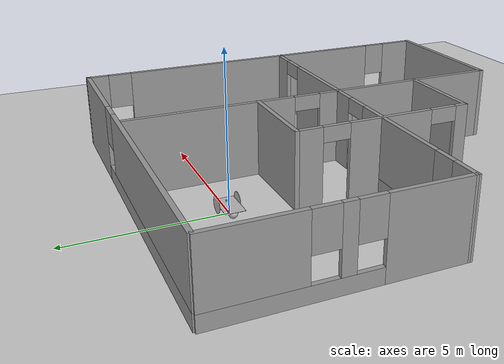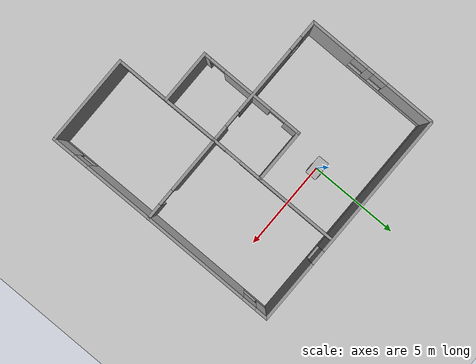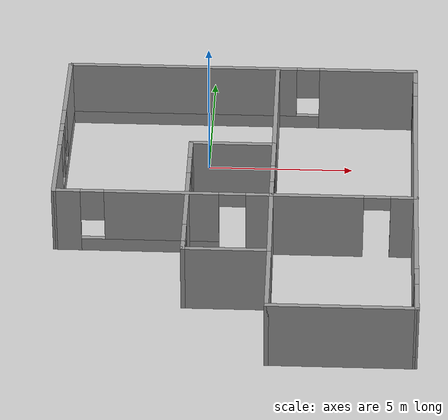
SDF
<sdf version="1.6">
 <world name="default">
  <light name="sun" type="directional">
   <pose>0 0 10 0 -0 0</pose>
   <diffuse>0.8 0.8 0.8 1</diffuse>
   <specular>0.2 0.2 0.2 1</specular>
   <attenuation>
    <range>1000</range>
    <constant>0.9</constant>
    <linear>0.01</linear>
    <quadratic>0.001</quadratic>
   </attenuation>
   <direction>-0.5 0.1 -0.9</direction>
  </light>
  <model name="ground_plane">
   <static>1</static>
   <link name="link">
    <collision name="collision">
     <geometry><plane><normal>0 0 1</normal><size>100 100</size></plane></geometry>
     <surface>
      <contact><collide_bitmask>65535</collide_bitmask></contact>
      <friction><ode><mu>100</mu><mu2>50</mu2></ode></friction>
     </surface>
    </collision>
    <visual name="visual">
     <cast_shadows>0</cast_shadows>
     <geometry><plane><normal>0 0 1</normal><size>100 100</size></plane></geometry>
     <material>
      <script><uri>file://media/materials/scripts/gazebo.material</uri><name>Gazebo/Grey</name></script>
     </material>
    </visual>
   </link>
  </model>
  <gravity>0 0 -9.8</gravity>
  <magnetic_field>6e-06 2.3e-05 -4.2e-05</magnetic_field>
  <atmosphere type="adiabatic"/>
  <physics name="default_physics" default="0" type="ode">
   <max_step_size>0.001</max_step_size>
   <real_time_factor>1</real_time_factor>
   <real_time_update_rate>1000</real_time_update_rate>
  </physics>
  <scene><ambient>0.4 0.4 0.4 1</ambient><background>0.7 0.7 0.7 1</background><shadows>1</shadows></scene>
  <audio><device>default</device></audio>
  <spherical_coordinates>
   <surface_model>EARTH_WGS84</surface_model>
   <latitude_deg>0</latitude_deg>
   <longitude_deg>0</longitude_deg>
   <elevation>0</elevation>
   <heading_deg>0</heading_deg>
  </spherical_coordinates>
  <model name="waychair">
   <link name="base_footprint">
    <inertial>
     <pose>0.002475 0 0.141733 0 -0 0</pose>
     <mass>20.2</mass>
     <inertia>
      <ixx>0.734224</ixx>
      <ixy>0</ixy>
      <ixz>-0.00866337</ixz>
      <iyy>1.69526</iyy>
      <iyz>0</iyz>
      <izz>0.961255</izz>
     </inertia>
    </inertial>
    <collision name="base_footprint_fixed_joint_lump__base_link_collision">
     <pose>0 0 0.28 0 -0 0</pose>
     <geometry><box><size>1.067 0.635 0.01</size></box></geometry>
    </collision>
    <collision name="base_footprint_fixed_joint_lump__sensor_laser_collision_1">
     <pose>0.25 0 0.315 0 -0 0</pose>
     <geometry><box><size>0.04 0.04 0.04</size></box></geometry>
    </collision>
    <visual name="base_footprint_visual"><geometry><box><size>0.001 0.001 0.001</size></box></geometry></visual>
    <visual name="base_footprint_fixed_joint_lump__base_link_visual_1">
     <pose>0 0 0.28 0 -0 0</pose>
     <geometry><box><size>1.067 0.635 0.01</size></box></geometry>
    </visual>
    <visual name="base_footprint_fixed_joint_lump__sensor_laser_visual_2">
     <pose>0.25 0 0.315 0 -0 0</pose>
     <geometry><box><size>0.04 0.04 0.04</size></box></geometry>
     <material><script><uri>__default__</uri><name>__default__</name></script></material>
    </visual>
    <sensor name="head_hokuyo_sensor" type="ray">
     <visualize>1</visualize>
     <update_rate>20</update_rate>
     <ray>
      <scan>
       <horizontal>
        <samples>1440</samples>
        <resolution>1</resolution>
        <min_angle>-3.14159</min_angle>
        <max_angle>3.14159</max_angle>
       </horizontal>
       <vertical><samples>1</samples><min_angle>0</min_angle><max_angle>0</max_angle></vertical>
      </scan>
      <range><min>0.06</min><max>20</max><resolution>0.01</resolution></range>
      <noise><type>gaussian</type><mean>0</mean><stddev>0.01</stddev></noise>
     </ray>
     <plugin name="gazebo_ros_head_hokuyo_controller" filename="libgazebo_ros_laser.so">
      <topicName>/waychair/laser_scan/scan</topicName>
      <frameName>sensor_laser</frameName>
      <robotNamespace>/</robotNamespace>
     </plugin>
     <pose>0.25 0 0.315 0 -0 0</pose>
    </sensor>
   </link>
   <link name="caster_wheel">
    <pose>-0.3 0 0.1375 0 -0 0</pose>
    <inertial>
     <mass>1</mass>
     <inertia>
      <ixx>0.0075625</ixx>
      <ixy>0</ixy>
      <ixz>0</ixz>
      <iyy>0.0075625</iyy>
      <iyz>0</iyz>
      <izz>0.0075625</izz>
     </inertia>
    </inertial>
    <collision name="caster_wheel_collision">
     <geometry><sphere><radius>0.1375</radius></sphere></geometry>
    </collision>
    <visual name="caster_wheel_visual">
     <pose>0 0 0 1.5708 -0 0</pose>
     <geometry><sphere><radius>0.1375</radius></sphere></geometry>
    </visual>
   </link>
   <joint name="caster_wheel_joint" type="revolute">
    <child>caster_wheel</child>
    <parent>base_footprint</parent>
    <axis>
     <xyz>0 1 0</xyz>
     <limit><lower>-1e+16</lower><upper>1e+16</upper></limit>
     <dynamics><spring_reference>0</spring_reference><spring_stiffness>0</spring_stiffness></dynamics>
     <use_parent_model_frame>1</use_parent_model_frame>
    </axis>
   </joint>
   <link name="left_wheel">
    <pose>0.2 0.3245 0.275 0 -0 0</pose>
    <inertial>
     <mass>1</mass>
     <inertia>
      <ixx>0.0189146</ixx>
      <ixy>0</ixy>
      <ixz>0</ixz>
      <iyy>0.0189146</iyy>
      <iyz>0</iyz>
      <izz>0.0378125</izz>
     </inertia>
    </inertial>
    <collision name="left_wheel_collision">
     <pose>0 0 0 1.5708 -0 0</pose>
     <geometry><cylinder><length>0.01</length><radius>0.275</radius></cylinder></geometry>
    </collision>
    <visual name="left_wheel_visual">
     <pose>0 0 0 1.5708 -0 0</pose>
     <geometry><cylinder><length>0.01</length><radius>0.275</radius></cylinder></geometry>
    </visual>
   </link>
   <joint name="left_wheel_joint" type="revolute">
    <child>left_wheel</child>
    <parent>base_footprint</parent>
    <axis>
     <xyz>0 1 0</xyz>
     <limit><lower>-1e+16</lower><upper>1e+16</upper></limit>
     <dynamics><spring_reference>0</spring_reference><spring_stiffness>0</spring_stiffness></dynamics>
     <use_parent_model_frame>1</use_parent_model_frame>
    </axis>
   </joint>
   <link name="right_wheel">
    <pose>0.2 -0.3245 0.275 0 -0 0</pose>
    <inertial>
     <mass>1</mass>
     <inertia>
      <ixx>0.0189146</ixx>
      <ixy>0</ixy>
      <ixz>0</ixz>
      <iyy>0.0189146</iyy>
      <iyz>0</iyz>
      <izz>0.0378125</izz>
     </inertia>
    </inertial>
    <collision name="right_wheel_collision">
     <pose>0 0 0 1.5708 -0 0</pose>
     <geometry><cylinder><length>0.01</length><radius>0.275</radius></cylinder></geometry>
    </collision>
    <visual name="right_wheel_visual">
     <pose>0 0 0 1.5708 -0 0</pose>
     <geometry><cylinder><length>0.01</length><radius>0.275</radius></cylinder></geometry>
    </visual>
   </link>
   <joint name="right_wheel_joint" type="revolute">
    <child>right_wheel</child>
    <parent>base_footprint</parent>
    <axis>
     <xyz>0 1 0</xyz>
     <limit><lower>-1e+16</lower><upper>1e+16</upper></limit>
     <dynamics><spring_reference>0</spring_reference><spring_stiffness>0</spring_stiffness></dynamics>
     <use_parent_model_frame>1</use_parent_model_frame>
    </axis>
   </joint>
   <static>0</static>
   <plugin name="differential_drive_controller" filename="libgazebo_ros_diff_drive.so">
    <alwaysOn>0</alwaysOn>
    <legacyMode>0</legacyMode>
    <updateRate>20</updateRate>
    <leftJoint>left_wheel_joint</leftJoint>
    <rightJoint>right_wheel_joint</rightJoint>
    <wheelSeparation>0.1</wheelSeparation>
    <wheelDiameter>0.55</wheelDiameter>
    <torque>20</torque>
    <commandTopic>/waychair/base_controller/cmd_vel</commandTopic>
    <odometryTopic>/waychair/base_controller/odom</odometryTopic>
    <odometryFrame>odom</odometryFrame>
    <robotBaseFrame>base_footprint</robotBaseFrame>
    <robotNamespace>/</robotNamespace>
   </plugin>
   <pose>-0.01429 -0.001596 -2e-06 -0 -8e-06 0.006543</pose>
  </model>
  <model name="home">
   <pose>1.06393 -4.00159 0 0 -0 0</pose>
   <link name="Wall_11">
    <pose>-2.43351 -0.752008 0 0 -0 -0.000554</pose>
    <visual name="Wall_11_Visual_0">
     <pose>-3.25375 0 1.25 0 -0 0</pose>
     <geometry><box><size>0.975464 0.15 2.5</size></box></geometry>
     <material>
      <script><uri>file://media/materials/scripts/gazebo.material</uri><name>Gazebo/Grey</name></script>
      <ambient>1 1 1 1</ambient>
     </material>
     <meta><layer>0</layer></meta>
    </visual>
    <collision name="Wall_11_Collision_0">
     <geometry><box><size>0.975464 0.15 2.5</size></box></geometry>
     <pose>-3.25375 0 1.25 0 -0 0</pose>
    </collision>
    <visual name="Wall_11_Visual_1">
     <pose>3.27397 0 1.25 0 -0 0</pose>
     <geometry><box><size>0.935038 0.15 2.5</size></box></geometry>
     <material>
      <script><uri>file://media/materials/scripts/gazebo.material</uri><name>Gazebo/Grey</name></script>
      <ambient>1 1 1 1</ambient>
     </material>
     <meta><layer>0</layer></meta>
    </visual>
    <collision name="Wall_11_Collision_1">
     <geometry><box><size>0.935038 0.15 2.5</size></box></geometry>
     <pose>3.27397 0 1.25 0 -0 0</pose>
    </collision>
    <visual name="Wall_11_Visual_2">
     <pose>-0.429787 0 0.25 0 -0 0</pose>
     <geometry><box><size>4.67247 0.15 0.5</size></box></geometry>
     <material>
      <script><uri>file://media/materials/scripts/gazebo.material</uri><name>Gazebo/Grey</name></script>
      <ambient>1 1 1 1</ambient>
     </material>
     <meta><layer>0</layer></meta>
    </visual>
    <collision name="Wall_11_Collision_2">
     <geometry><box><size>4.67247 0.15 0.5</size></box></geometry>
     <pose>-0.429787 0 0.25 0 -0 0</pose>
    </collision>
    <visual name="Wall_11_Visual_3">
     <pose>-0.029787 0 1.5 0 -0 0</pose>
     <geometry><box><size>3.87247 0.15 2</size></box></geometry>
     <material>
      <script><uri>file://media/materials/scripts/gazebo.material</uri><name>Gazebo/Grey</name></script>
      <ambient>1 1 1 1</ambient>
     </material>
     <meta><layer>0</layer></meta>
    </visual>
    <collision name="Wall_11_Collision_3">
     <geometry><box><size>3.87247 0.15 2</size></box></geometry>
     <pose>-0.029787 0 1.5 0 -0 0</pose>
    </collision>
    <visual name="Wall_11_Visual_4">
     <pose>-2.36602 0 1.9 0 -0 0</pose>
     <geometry><box><size>0.8 0.15 1.2</size></box></geometry>
     <material>
      <script><uri>file://media/materials/scripts/gazebo.material</uri><name>Gazebo/Grey</name></script>
      <ambient>1 1 1 1</ambient>
     </material>
     <meta><layer>0</layer></meta>
    </visual>
    <collision name="Wall_11_Collision_4">
     <geometry><box><size>0.8 0.15 1.2</size></box></geometry>
     <pose>-2.36602 0 1.9 0 -0 0</pose>
    </collision>
    <visual name="Wall_11_Visual_5">
     <pose>2.35645 0 2.25 0 -0 0</pose>
     <geometry><box><size>0.9 0.15 0.5</size></box></geometry>
     <material>
      <script><uri>file://media/materials/scripts/gazebo.material</uri><name>Gazebo/Grey</name></script>
      <ambient>1 1 1 1</ambient>
     </material>
     <meta><layer>0</layer></meta>
    </visual>
    <collision name="Wall_11_Collision_5">
     <geometry><box><size>0.9 0.15 0.5</size></box></geometry>
     <pose>2.35645 0 2.25 0 -0 0</pose>
    </collision>
   </link>
   <link name="Wall_12">
    <pose>1.24149 0.672992 0 0 -0 1.56483</pose>
    <visual name="Wall_12_Visual_0">
     <pose>-1.10509 0 1.25 0 -0 0</pose>
     <geometry><box><size>0.793929 0.15 2.5</size></box></geometry>
     <material>
      <script><uri>file://media/materials/scripts/gazebo.material</uri><name>Gazebo/Grey</name></script>
      <ambient>1 1 1 1</ambient>
     </material>
     <meta><layer>0</layer></meta>
    </visual>
    <collision name="Wall_12_Collision_0">
     <geometry><box><size>0.793929 0.15 2.5</size></box></geometry>
     <pose>-1.10509 0 1.25 0 -0 0</pose>
    </collision>
    <visual name="Wall_12_Visual_1">
     <pose>0.846965 0 1.25 0 -0 0</pose>
     <geometry><box><size>1.31018 0.15 2.5</size></box></geometry>
     <material>
      <script><uri>file://media/materials/scripts/gazebo.material</uri><name>Gazebo/Grey</name></script>
      <ambient>1 1 1 1</ambient>
     </material>
     <meta><layer>0</layer></meta>
    </visual>
    <collision name="Wall_12_Collision_1">
     <geometry><box><size>1.31018 0.15 2.5</size></box></geometry>
     <pose>0.846965 0 1.25 0 -0 0</pose>
    </collision>
    <visual name="Wall_12_Visual_2">
     <pose>-0.258126 0 2.25 0 -0 0</pose>
     <geometry><box><size>0.9 0.15 0.5</size></box></geometry>
     <material>
      <script><uri>file://media/materials/scripts/gazebo.material</uri><name>Gazebo/Grey</name></script>
      <ambient>1 1 1 1</ambient>
     </material>
     <meta><layer>0</layer></meta>
    </visual>
    <collision name="Wall_12_Collision_2">
     <geometry><box><size>0.9 0.15 0.5</size></box></geometry>
     <pose>-0.258126 0 2.25 0 -0 0</pose>
    </collision>
   </link>
   <link name="Wall_13">
    <collision name="Wall_13_Collision">
     <geometry><box><size>3 0.15 2.5</size></box></geometry>
     <pose>0 0 1.25 0 -0 0</pose>
    </collision>
    <visual name="Wall_13_Visual">
     <pose>0 0 1.25 0 -0 0</pose>
     <geometry><box><size>3 0.15 2.5</size></box></geometry>
     <material>
      <script><uri>file://media/materials/scripts/gazebo.material</uri><name>Gazebo/Grey</name></script>
      <ambient>1 1 1 1</ambient>
     </material>
     <meta><layer>0</layer></meta>
    </visual>
    <pose>-0.174993 2.10002 0 0 -0 3.14159</pose>
   </link>
   <link name="Wall_14">
    <pose>-1.59999 -0.824978 0 0 -0 -1.5708</pose>
    <visual name="Wall_14_Visual_0">
     <pose>-2.54191 0 1.25 0 -0 0</pose>
     <geometry><box><size>0.916176 0.15 2.5</size></box></geometry>
     <material>
      <script><uri>file://media/materials/scripts/gazebo.material</uri><name>Gazebo/Grey</name></script>
      <ambient>1 1 1 1</ambient>
     </material>
     <meta><layer>0</layer></meta>
    </visual>
    <collision name="Wall_14_Collision_0">
     <geometry><box><size>0.916176 0.15 2.5</size></box></geometry>
     <pose>-2.54191 0 1.25 0 -0 0</pose>
    </collision>
    <visual name="Wall_14_Visual_1">
     <pose>0.235123 0 1.25 0 -0 0</pose>
     <geometry><box><size>2.83789 0.15 2.5</size></box></geometry>
     <material>
      <script><uri>file://media/materials/scripts/gazebo.material</uri><name>Gazebo/Grey</name></script>
      <ambient>1 1 1 1</ambient>
     </material>
     <meta><layer>0</layer></meta>
    </visual>
    <collision name="Wall_14_Collision_1">
     <geometry><box><size>2.83789 0.15 2.5</size></box></geometry>
     <pose>0.235123 0 1.25 0 -0 0</pose>
    </collision>
    <visual name="Wall_14_Visual_2">
     <pose>2.77704 0 1.25 0 -0 0</pose>
     <geometry><box><size>0.44593 0.15 2.5</size></box></geometry>
     <material>
      <script><uri>file://media/materials/scripts/gazebo.material</uri><name>Gazebo/Grey</name></script>
      <ambient>1 1 1 1</ambient>
     </material>
     <meta><layer>0</layer></meta>
    </visual>
    <collision name="Wall_14_Collision_2">
     <geometry><box><size>0.44593 0.15 2.5</size></box></geometry>
     <pose>2.77704 0 1.25 0 -0 0</pose>
    </collision>
    <visual name="Wall_14_Visual_3">
     <pose>-1.63382 0 2.25 0 -0 0</pose>
     <geometry><box><size>0.9 0.15 0.5</size></box></geometry>
     <material>
      <script><uri>file://media/materials/scripts/gazebo.material</uri><name>Gazebo/Grey</name></script>
      <ambient>1 1 1 1</ambient>
     </material>
     <meta><layer>0</layer></meta>
    </visual>
    <collision name="Wall_14_Collision_3">
     <geometry><box><size>0.9 0.15 0.5</size></box></geometry>
     <pose>-1.63382 0 2.25 0 -0 0</pose>
    </collision>
    <visual name="Wall_14_Visual_4">
     <pose>2.10407 0 2.25 0 -0 0</pose>
     <geometry><box><size>0.9 0.15 0.5</size></box></geometry>
     <material>
      <script><uri>file://media/materials/scripts/gazebo.material</uri><name>Gazebo/Grey</name></script>
      <ambient>1 1 1 1</ambient>
     </material>
     <meta><layer>0</layer></meta>
    </visual>
    <collision name="Wall_14_Collision_4">
     <geometry><box><size>0.9 0.15 0.5</size></box></geometry>
     <pose>2.10407 0 2.25 0 -0 0</pose>
    </collision>
   </link>
   <link name="Wall_15">
    <collision name="Wall_15_Collision">
     <geometry><box><size>3 0.15 2.5</size></box></geometry>
     <pose>0 0 1.25 0 -0 0</pose>
    </collision>
    <visual name="Wall_15_Visual">
     <pose>0 0 1.25 0 -0 0</pose>
     <geometry><box><size>3 0.15 2.5</size></box></geometry>
     <material>
      <script><uri>file://media/materials/scripts/gazebo.material</uri><name>Gazebo/Grey</name></script>
      <ambient>1 1 1 1</ambient>
     </material>
     <meta><layer>0</layer></meta>
    </visual>
    <pose>-0.174993 -3.74998 0 0 -0 0</pose>
   </link>
   <link name="Wall_16">
    <collision name="Wall_16_Collision">
     <geometry><box><size>3.14599 0.15 2.5</size></box></geometry>
     <pose>0 0 1.25 0 -0 0</pose>
    </collision>
    <visual name="Wall_16_Visual">
     <pose>0 0 1.25 0 -0 0</pose>
     <geometry><box><size>3.14599 0.15 2.5</size></box></geometry>
     <material>
      <script><uri>file://media/materials/scripts/gazebo.material</uri><name>Gazebo/Grey</name></script>
      <ambient>1 1 1 1</ambient>
     </material>
     <meta><layer>0</layer></meta>
    </visual>
    <pose>1.24149 -2.25201 0 0 -0 1.57648</pose>
   </link>
   <link name="Wall_17">
    <pose>3.67095 -0.754038 0 0 -0 0</pose>
    <visual name="Wall_17_Visual_0">
     <pose>-0.913368 0 1.25 0 -0 0</pose>
     <geometry><box><size>3.17326 0.15 2.5</size></box></geometry>
     <material>
      <script><uri>file://media/materials/scripts/gazebo.material</uri><name>Gazebo/Grey</name></script>
      <ambient>1 1 1 1</ambient>
     </material>
     <meta><layer>0</layer></meta>
    </visual>
    <collision name="Wall_17_Collision_0">
     <geometry><box><size>3.17326 0.15 2.5</size></box></geometry>
     <pose>-0.913368 0 1.25 0 -0 0</pose>
    </collision>
    <visual name="Wall_17_Visual_1">
     <pose>2.03663 0 1.25 0 -0 0</pose>
     <geometry><box><size>0.926735 0.15 2.5</size></box></geometry>
     <material>
      <script><uri>file://media/materials/scripts/gazebo.material</uri><name>Gazebo/Grey</name></script>
      <ambient>1 1 1 1</ambient>
     </material>
     <meta><layer>0</layer></meta>
    </visual>
    <collision name="Wall_17_Collision_1">
     <geometry><box><size>0.926735 0.15 2.5</size></box></geometry>
     <pose>2.03663 0 1.25 0 -0 0</pose>
    </collision>
    <visual name="Wall_17_Visual_2">
     <pose>1.12326 0 2.25 0 -0 0</pose>
     <geometry><box><size>0.9 0.15 0.5</size></box></geometry>
     <material>
      <script><uri>file://media/materials/scripts/gazebo.material</uri><name>Gazebo/Grey</name></script>
      <ambient>1 1 1 1</ambient>
     </material>
     <meta><layer>0</layer></meta>
    </visual>
    <collision name="Wall_17_Collision_2">
     <geometry><box><size>0.9 0.15 0.5</size></box></geometry>
     <pose>1.12326 0 2.25 0 -0 0</pose>
    </collision>
   </link>
   <link name="Wall_18">
    <pose>6.09149 2.92299 0 0 -0 1.56848</pose>
    <visual name="Wall_18_Visual_0">
     <pose>-0.782712 0 1.25 0 -0 0</pose>
     <geometry><box><size>5.93866 0.15 2.5</size></box></geometry>
     <material>
      <script><uri>file://media/materials/scripts/gazebo.material</uri><name>Gazebo/Grey</name></script>
      <ambient>1 1 1 1</ambient>
     </material>
     <meta><layer>0</layer></meta>
    </visual>
    <collision name="Wall_18_Collision_0">
     <geometry><box><size>5.93866 0.15 2.5</size></box></geometry>
     <pose>-0.782712 0 1.25 0 -0 0</pose>
    </collision>
    <visual name="Wall_18_Visual_1">
     <pose>2.96933 0 0.25 0 -0 0</pose>
     <geometry><box><size>1.56542 0.15 0.5</size></box></geometry>
     <material>
      <script><uri>file://media/materials/scripts/gazebo.material</uri><name>Gazebo/Grey</name></script>
      <ambient>1 1 1 1</ambient>
     </material>
     <meta><layer>0</layer></meta>
    </visual>
    <collision name="Wall_18_Collision_1">
     <geometry><box><size>1.56542 0.15 0.5</size></box></geometry>
     <pose>2.96933 0 0.25 0 -0 0</pose>
    </collision>
    <visual name="Wall_18_Visual_2">
     <pose>3.36933 0 1.5 0 -0 0</pose>
     <geometry><box><size>0.765424 0.15 2</size></box></geometry>
     <material>
      <script><uri>file://media/materials/scripts/gazebo.material</uri><name>Gazebo/Grey</name></script>
      <ambient>1 1 1 1</ambient>
     </material>
     <meta><layer>0</layer></meta>
    </visual>
    <collision name="Wall_18_Collision_2">
     <geometry><box><size>0.765424 0.15 2</size></box></geometry>
     <pose>3.36933 0 1.5 0 -0 0</pose>
    </collision>
    <visual name="Wall_18_Visual_3">
     <pose>2.58662 0 1.9 0 -0 0</pose>
     <geometry><box><size>0.8 0.15 1.2</size></box></geometry>
     <material>
      <script><uri>file://media/materials/scripts/gazebo.material</uri><name>Gazebo/Grey</name></script>
      <ambient>1 1 1 1</ambient>
     </material>
     <meta><layer>0</layer></meta>
    </visual>
    <collision name="Wall_18_Collision_3">
     <geometry><box><size>0.8 0.15 1.2</size></box></geometry>
     <pose>2.58662 0 1.9 0 -0 0</pose>
    </collision>
   </link>
   <link name="Wall_19">
    <pose>0.050007 6.60002 0 0 -0 3.14159</pose>
    <visual name="Wall_19_Visual_0">
     <pose>-4.39916 0 1.25 0 -0 0</pose>
     <geometry><box><size>3.45169 0.15 2.5</size></box></geometry>
     <material>
      <script><uri>file://media/materials/scripts/gazebo.material</uri><name>Gazebo/Grey</name></script>
      <ambient>1 1 1 1</ambient>
     </material>
     <meta><layer>0</layer></meta>
    </visual>
    <collision name="Wall_19_Collision_0">
     <geometry><box><size>3.45169 0.15 2.5</size></box></geometry>
     <pose>-4.39916 0 1.25 0 -0 0</pose>
    </collision>
    <visual name="Wall_19_Visual_1">
     <pose>1.72584 0 0.25 0 -0 0</pose>
     <geometry><box><size>8.79831 0.15 0.5</size></box></geometry>
     <material>
      <script><uri>file://media/materials/scripts/gazebo.material</uri><name>Gazebo/Grey</name></script>
      <ambient>1 1 1 1</ambient>
     </material>
     <meta><layer>0</layer></meta>
    </visual>
    <collision name="Wall_19_Collision_1">
     <geometry><box><size>8.79831 0.15 0.5</size></box></geometry>
     <pose>1.72584 0 0.25 0 -0 0</pose>
    </collision>
    <visual name="Wall_19_Visual_2">
     <pose>2.12584 0 1.5 0 -0 0</pose>
     <geometry><box><size>7.99831 0.15 2</size></box></geometry>
     <material>
      <script><uri>file://media/materials/scripts/gazebo.material</uri><name>Gazebo/Grey</name></script>
      <ambient>1 1 1 1</ambient>
     </material>
     <meta><layer>0</layer></meta>
    </visual>
    <collision name="Wall_19_Collision_2">
     <geometry><box><size>7.99831 0.15 2</size></box></geometry>
     <pose>2.12584 0 1.5 0 -0 0</pose>
    </collision>
    <visual name="Wall_19_Visual_3">
     <pose>-2.27331 0 1.9 0 -0 0</pose>
     <geometry><box><size>0.8 0.15 1.2</size></box></geometry>
     <material>
      <script><uri>file://media/materials/scripts/gazebo.material</uri><name>Gazebo/Grey</name></script>
      <ambient>1 1 1 1</ambient>
     </material>
     <meta><layer>0</layer></meta>
    </visual>
    <collision name="Wall_19_Collision_3">
     <geometry><box><size>0.8 0.15 1.2</size></box></geometry>
     <pose>-2.27331 0 1.9 0 -0 0</pose>
    </collision>
   </link>
   <link name="Wall_21">
    <pose>6.09149 -3.67701 0 0 -0 -1.56788</pose>
    <visual name="Wall_21_Visual_0">
     <pose>-1.05804 0 1.25 0 -0 0</pose>
     <geometry><box><size>3.87989 0.15 2.5</size></box></geometry>
     <material>
      <script><uri>file://media/materials/scripts/gazebo.material</uri><name>Gazebo/Grey</name></script>
      <ambient>1 1 1 1</ambient>
     </material>
     <meta><layer>0</layer></meta>
    </visual>
    <collision name="Wall_21_Collision_0">
     <geometry><box><size>3.87989 0.15 2.5</size></box></geometry>
     <pose>-1.05804 0 1.25 0 -0 0</pose>
    </collision>
    <visual name="Wall_21_Visual_1">
     <pose>1.93994 0 0.25 0 -0 0</pose>
     <geometry><box><size>2.11608 0.15 0.5</size></box></geometry>
     <material>
      <script><uri>file://media/materials/scripts/gazebo.material</uri><name>Gazebo/Grey</name></script>
      <ambient>1 1 1 1</ambient>
     </material>
     <meta><layer>0</layer></meta>
    </visual>
    <collision name="Wall_21_Collision_1">
     <geometry><box><size>2.11608 0.15 0.5</size></box></geometry>
     <pose>1.93994 0 0.25 0 -0 0</pose>
    </collision>
    <visual name="Wall_21_Visual_2">
     <pose>2.33994 0 1.5 0 -0 0</pose>
     <geometry><box><size>1.31608 0.15 2</size></box></geometry>
     <material>
      <script><uri>file://media/materials/scripts/gazebo.material</uri><name>Gazebo/Grey</name></script>
      <ambient>1 1 1 1</ambient>
     </material>
     <meta><layer>0</layer></meta>
    </visual>
    <collision name="Wall_21_Collision_2">
     <geometry><box><size>1.31608 0.15 2</size></box></geometry>
     <pose>2.33994 0 1.5 0 -0 0</pose>
    </collision>
    <visual name="Wall_21_Visual_3">
     <pose>1.28191 0 1.9 0 -0 0</pose>
     <geometry><box><size>0.8 0.15 1.2</size></box></geometry>
     <material>
      <script><uri>file://media/materials/scripts/gazebo.material</uri><name>Gazebo/Grey</name></script>
      <ambient>1 1 1 1</ambient>
     </material>
     <meta><layer>0</layer></meta>
    </visual>
    <collision name="Wall_21_Collision_3">
     <geometry><box><size>0.8 0.15 1.2</size></box></geometry>
     <pose>1.28191 0 1.9 0 -0 0</pose>
    </collision>
   </link>
   <link name="Wall_22">
    <collision name="Wall_22_Collision">
     <geometry><box><size>5 0.15 2.5</size></box></geometry>
     <pose>0 0 1.25 0 -0 0</pose>
    </collision>
    <visual name="Wall_22_Visual">
     <pose>0 0 1.25 0 -0 0</pose>
     <geometry><box><size>5 0.15 2.5</size></box></geometry>
     <material>
      <script><uri>file://media/materials/scripts/gazebo.material</uri><name>Gazebo/Grey</name></script>
      <ambient>1 1 1 1</ambient>
     </material>
     <meta><layer>0</layer></meta>
    </visual>
    <pose>3.67501 -6.59998 0 0 -0 3.14159</pose>
   </link>
   <link name="Wall_23">
    <collision name="Wall_23_Collision">
     <geometry><box><size>3 0.15 2.5</size></box></geometry>
     <pose>0 0 1.25 0 -0 0</pose>
    </collision>
    <visual name="Wall_23_Visual">
     <pose>0 0 1.25 0 -0 0</pose>
     <geometry><box><size>3 0.15 2.5</size></box></geometry>
     <material>
      <script><uri>file://media/materials/scripts/gazebo.material</uri><name>Gazebo/Grey</name></script>
      <ambient>1 1 1 1</ambient>
     </material>
     <meta><layer>0</layer></meta>
    </visual>
    <pose>1.25001 -5.17498 0 0 -0 1.5708</pose>
   </link>
   <link name="Wall_25">
    <collision name="Wall_25_Collision">
     <geometry><box><size>4.5 0.15 2.5</size></box></geometry>
     <pose>0 0 1.25 0 -0 0</pose>
    </collision>
    <visual name="Wall_25_Visual">
     <pose>0 0 1.25 0 -0 0</pose>
     <geometry><box><size>4.5 0.15 2.5</size></box></geometry>
     <material>
      <script><uri>file://media/materials/scripts/gazebo.material</uri><name>Gazebo/Grey</name></script>
      <ambient>1 1 1 1</ambient>
     </material>
     <meta><layer>0</layer></meta>
    </visual>
    <pose>1.25001 4.27502 0 0 -0 1.5708</pose>
   </link>
   <link name="Wall_6">
    <pose>-6.08871 2.90247 0 0 -0 1.56771</pose>
    <visual name="Wall_6_Visual_0">
     <pose>-2.41602 0 1.25 0 -0 0</pose>
     <geometry><box><size>2.62287 0.15 2.5</size></box></geometry>
     <material>
      <script><uri>file://media/materials/scripts/gazebo.material</uri><name>Gazebo/Grey</name></script>
      <ambient>1 1 1 1</ambient>
     </material>
     <meta><layer>0</layer></meta>
    </visual>
    <collision name="Wall_6_Collision_0">
     <geometry><box><size>2.62287 0.15 2.5</size></box></geometry>
     <pose>-2.41602 0 1.25 0 -0 0</pose>
    </collision>
    <visual name="Wall_6_Visual_1">
     <pose>1.31144 0 0.25 0 -0 0</pose>
     <geometry><box><size>4.83205 0.15 0.5</size></box></geometry>
     <material>
      <script><uri>file://media/materials/scripts/gazebo.material</uri><name>Gazebo/Grey</name></script>
      <ambient>1 1 1 1</ambient>
     </material>
     <meta><layer>0</layer></meta>
    </visual>
    <collision name="Wall_6_Collision_1">
     <geometry><box><size>4.83205 0.15 0.5</size></box></geometry>
     <pose>1.31144 0 0.25 0 -0 0</pose>
    </collision>
    <visual name="Wall_6_Visual_2">
     <pose>-0.092044 0 1.5 0 -0 0</pose>
     <geometry><box><size>0.425087 0.15 2</size></box></geometry>
     <material>
      <script><uri>file://media/materials/scripts/gazebo.material</uri><name>Gazebo/Grey</name></script>
      <ambient>1 1 1 1</ambient>
     </material>
     <meta><layer>0</layer></meta>
    </visual>
    <collision name="Wall_6_Collision_2">
     <geometry><box><size>0.425087 0.15 2</size></box></geometry>
     <pose>-0.092044 0 1.5 0 -0 0</pose>
    </collision>
    <visual name="Wall_6_Visual_3">
     <pose>2.32398 0 1.5 0 -0 0</pose>
     <geometry><box><size>2.80696 0.15 2</size></box></geometry>
     <material>
      <script><uri>file://media/materials/scripts/gazebo.material</uri><name>Gazebo/Grey</name></script>
      <ambient>1 1 1 1</ambient>
     </material>
     <meta><layer>0</layer></meta>
    </visual>
    <collision name="Wall_6_Collision_3">
     <geometry><box><size>2.80696 0.15 2</size></box></geometry>
     <pose>2.32398 0 1.5 0 -0 0</pose>
    </collision>
    <visual name="Wall_6_Visual_4">
     <pose>-0.704588 0 1.9 0 -0 0</pose>
     <geometry><box><size>0.8 0.15 1.2</size></box></geometry>
     <material>
      <script><uri>file://media/materials/scripts/gazebo.material</uri><name>Gazebo/Grey</name></script>
      <ambient>1 1 1 1</ambient>
     </material>
     <meta><layer>0</layer></meta>
    </visual>
    <collision name="Wall_6_Collision_4">
     <geometry><box><size>0.8 0.15 1.2</size></box></geometry>
     <pose>-0.704588 0 1.9 0 -0 0</pose>
    </collision>
    <visual name="Wall_6_Visual_5">
     <pose>0.520499 0 1.9 0 -0 0</pose>
     <geometry><box><size>0.8 0.15 1.2</size></box></geometry>
     <material>
      <script><uri>file://media/materials/scripts/gazebo.material</uri><name>Gazebo/Grey</name></script>
      <ambient>1 1 1 1</ambient>
     </material>
     <meta><layer>0</layer></meta>
    </visual>
    <collision name="Wall_6_Collision_5">
     <geometry><box><size>0.8 0.15 1.2</size></box></geometry>
     <pose>0.520499 0 1.9 0 -0 0</pose>
    </collision>
   </link>
   <static>1</static>
  </model>
 </world>
</sdf>
